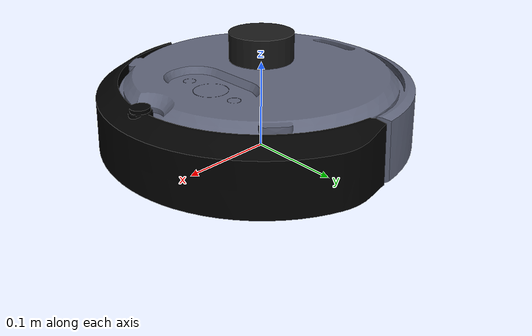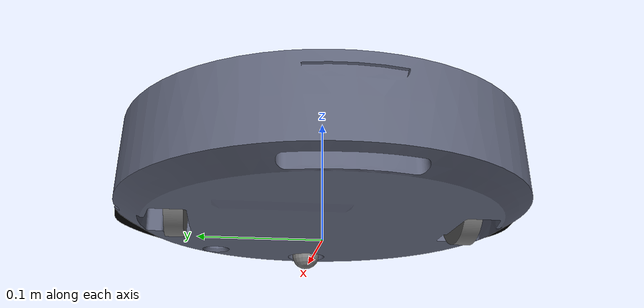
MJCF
<mujoco model="turtlebot4">
	<compiler angle="radian" coordinate="local" meshdir="./assets/meshes" autolimits="true"/>
		<!-- initial model from https://gitlab.dit.htwk-leipzig.de/eric.elbing/ai-enhanced-ros/-/tree/main/turtlebot4/turtlebot4ai_package-->
    <size nstack="300000" nuser_geom="1"/>
    <option gravity="0 0 -9.81" timestep="0.01"/>

    <asset>
        <material name="metal" rgba=".9 .95 .95 1"/>
        <material name="black" rgba="0 0 0 1"/>
        <material name="white" rgba="1 1 1 1"/>
        <material name="gray" rgba="0.371705 0.392426 0.474270 1"/>
        <mesh file="body_visual_processed.stl" scale="0.1 0.1 0.1"/>
        <mesh file="bumper_visual.obj" scale="0.001 0.001 0.001"/>
        <mesh file="top_reduced.stl" scale="0.001 0.001 0.001"/>
        <mesh file="weight_block.stl" scale="0.001 0.001 0.001"/>
        <mesh file="wheel.stl" scale="0.001 0.001 0.001"/>
    </asset>

  <worldbody>
      <body name="base" pos="0 0 0.0392" quat="0.70710678 0 0 0.70710678">    <freejoint name="floating_base_joint"/>
        <geom type="mesh" mesh="body_visual_processed" material="gray" mass="0.269"/>
        <site name="imu" pos="0.051 -0.035 0.0293" quat="0.70710678 0 0 -0.70710678"/>
        <body name="bumper" pos="0 0 0" axisangle="0 0 1 4.71239">
            <geom type="mesh" mesh="bumper_visual" material="black" mass="0.1"/>
        </body>
        <!-- WEIGHT BLOCKS -->
        <!-- WHEELS -->
        <body name="wheel_l" pos="0.11755 0.002 -0.0032">
            <geom type="mesh" mesh="wheel"/>
            <joint name="left" damping=".03" actuatorfrcrange="-.4 .4" pos="0 0 0" axis="1 0 0"/>
        </body>
        <body name="wheel_r" pos="-0.117 0.002 -0.0032">
            <geom type="mesh" mesh="wheel"/>
            <joint name="right" damping=".03" actuatorfrcrange="-.4 .4" pos="0 0 0" axis="1 0 0"/>
        </body>
        <body name="wheel_f" pos="0 -0.125 -0.026">
            <geom type="sphere" size="0.013 0.013"/>
            <joint type="ball"/>
        </body>

      <!-- Spinning 2D lidar (single rangefinder on a yaw hinge) -->
      <body name="lidar" pos="0.0 -0.00 0.08">
        <joint name="lidar_yaw" type="hinge" axis="0 0 1" damping="0.0032" armature="0.001" frictionloss="0" limited="false"/>
        <geom name="lidar_head_geom" type="cylinder" size="0.035 0.015" rgba="0.1 0.1 0.1 1.0" mass="0.01"/>
        <site name="rf" pos="0.025 0 0" axisangle="0 1 0 1.570796" size="0.003" rgba="0 1 0 0.5"/>
      </body>
    </body>
  </worldbody>

  <tendon>
    <fixed name="forward">
      <joint joint="left" coef=".83"/>
      <joint joint="right" coef=".83"/>
    </fixed>
    <fixed name="turn">
      <joint joint="left" coef="-.1"/>
      <joint joint="right" coef=".1"/>
    </fixed>
  </tendon>

  <actuator>
    <motor name="forward" tendon="forward" ctrlrange="-0.5 0.5"/>
    <motor name="turn" tendon="turn" ctrlrange="-2 2"/>
    <!-- Velocity servo for the lidar yaw joint -->
    <!-- Set control to 15.707963 (rad/s) for a 2.5 Hz spin -->
    <motor name="lidar_spin" joint="lidar_yaw" ctrllimited="true" ctrlrange="0.0 0.05"/>
  </actuator>

  <sensor>
    <!-- IMU -->
    <framequat name="imu_quat" objtype="site" objname="imu"/>
    <gyro name="imu_ang" site="imu"/>
    <accelerometer name="imu_acc" site="imu"/>

    <!-- Wheel joint states -->
    <jointpos name="left_pos"  joint="left"/>
    <jointvel name="left_vel"  joint="left"/>
    <jointpos name="right_pos" joint="right"/>
    <jointvel name="right_vel" joint="right"/>

    <!-- Lidar 2D rangefinders -->
    <!-- Lidar yaw -->
    <jointpos name="lidar_yaw_pos" joint="lidar_yaw"/>
    <jointvel name="lidar_yaw_vel" joint="lidar_yaw"/>
    <!-- Single 2D lidar rangefinder (returns distance along site -Z) -->
    <rangefinder name="scan" site="rf" cutoff="10"/>
    <velocimeter name="base_linvel" site="imu"/>

  </sensor>
</mujoco>
